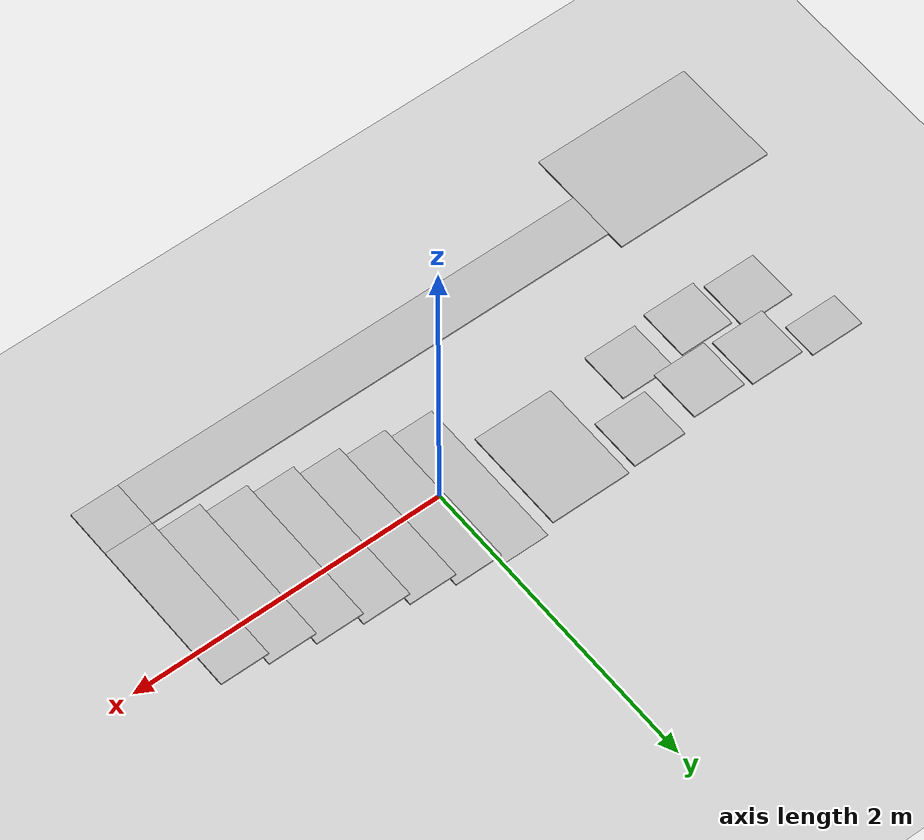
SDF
<?xml version="1.0" ?>
<sdf version="1.4">
  <world name="default">
    <physics type="ode">
      <gravity>0 0 -9.81</gravity>
      <ode>
        <solver>
          <type>quick</type>
          <iters>50</iters>
          <sor>1.4</sor>
        </solver>
        <constraints>
          <cfm>0.0</cfm>
          <erp>0.2</erp>
          <contact_max_correcting_vel>100.0</contact_max_correcting_vel>
          <contact_surface_layer>0.0</contact_surface_layer>
        </constraints>
      </ode>
      <real_time_update_rate>1000</real_time_update_rate>
      <max_step_size>0.001</max_step_size>
    </physics>

    <!-- A global light source -->
    <include>
      <uri>model://sun</uri>
    </include>

    <!-- A ground plane -->
    <include>
      <uri>model://ground_plane</uri>
    </include>

<model name="box_0">
<pose> -2.2800000000000002 0.415 0.045000000000000005 0 0 0</pose>
<static>true</static>
<link name="box_0_body">
  <inertial>
  <mass>1.0</mass>
  <inertia>
    <ixx>1.0</ixx>
    <ixy>0.0</ixy>
    <ixz>0.0</ixz>
    <iyy>1.0</iyy>
    <iyz>0.0</iyz>
    <izz>1.0</izz>
  </inertia>
</inertial>
<collision name="collision">
 <geometry>
    <box>
      <size>0.3400000000000003 0.23000000000000004 0.01</size>
    </box>
  </geometry>
</collision>
<visual name="visual">
  <geometry>
    <box>
      <size>0.3400000000000003 0.23000000000000004 0.01</size>
    </box>
  </geometry>
    </visual>
  </link>
</model>

<model name="box_1">
<pose> -2.08 0.015 0.095 0 0 0</pose>
<static>true</static>
<link name="box_1_body">
  <inertial>
  <mass>1.0</mass>
  <inertia>
    <ixx>1.0</ixx>
    <ixy>0.0</ixy>
    <ixz>0.0</ixz>
    <iyy>1.0</iyy>
    <iyz>0.0</iyz>
    <izz>1.0</izz>
  </inertia>
</inertial>
<collision name="collision">
 <geometry>
    <box>
      <size>0.3400000000000001 0.32999999999999996 0.01</size>
    </box>
  </geometry>
</collision>
<visual name="visual">
  <geometry>
    <box>
      <size>0.3400000000000001 0.32999999999999996 0.01</size>
    </box>
  </geometry>
    </visual>
  </link>
</model>

<model name="box_2">
<pose> -1.6600000000000001 0.015 0.195 0 0 0</pose>
<static>true</static>
<link name="box_2_body">
  <inertial>
  <mass>1.0</mass>
  <inertia>
    <ixx>1.0</ixx>
    <ixy>0.0</ixy>
    <ixz>0.0</ixz>
    <iyy>1.0</iyy>
    <iyz>0.0</iyz>
    <izz>1.0</izz>
  </inertia>
</inertial>
<collision name="collision">
 <geometry>
    <box>
      <size>0.3400000000000001 0.32999999999999996 0.01</size>
    </box>
  </geometry>
</collision>
<visual name="visual">
  <geometry>
    <box>
      <size>0.3400000000000001 0.32999999999999996 0.01</size>
    </box>
  </geometry>
    </visual>
  </link>
</model>

<model name="box_3">
<pose> -1.8599999999999999 0.36 0.145 0 0 0</pose>
<static>true</static>
<link name="box_3_body">
  <inertial>
  <mass>1.0</mass>
  <inertia>
    <ixx>1.0</ixx>
    <ixy>0.0</ixy>
    <ixz>0.0</ixz>
    <iyy>1.0</iyy>
    <iyz>0.0</iyz>
    <izz>1.0</izz>
  </inertia>
</inertial>
<collision name="collision">
 <geometry>
    <box>
      <size>0.33999999999999986 0.34 0.01</size>
    </box>
  </geometry>
</collision>
<visual name="visual">
  <geometry>
    <box>
      <size>0.33999999999999986 0.34 0.01</size>
    </box>
  </geometry>
    </visual>
  </link>
</model>

<model name="box_4">
<pose> -1.46 0.36 0.195 0 0 0</pose>
<static>true</static>
<link name="box_4_body">
  <inertial>
  <mass>1.0</mass>
  <inertia>
    <ixx>1.0</ixx>
    <ixy>0.0</ixy>
    <ixz>0.0</ixz>
    <iyy>1.0</iyy>
    <iyz>0.0</iyz>
    <izz>1.0</izz>
  </inertia>
</inertial>
<collision name="collision">
 <geometry>
    <box>
      <size>0.33999999999999986 0.34 0.01</size>
    </box>
  </geometry>
</collision>
<visual name="visual">
  <geometry>
    <box>
      <size>0.33999999999999986 0.34 0.01</size>
    </box>
  </geometry>
    </visual>
  </link>
</model>

<model name="box_5">
<pose> -1.26 0.015 0.145 0 0 0</pose>
<static>true</static>
<link name="box_5_body">
  <inertial>
  <mass>1.0</mass>
  <inertia>
    <ixx>1.0</ixx>
    <ixy>0.0</ixy>
    <ixz>0.0</ixz>
    <iyy>1.0</iyy>
    <iyz>0.0</iyz>
    <izz>1.0</izz>
  </inertia>
</inertial>
<collision name="collision">
 <geometry>
    <box>
      <size>0.33999999999999986 0.32999999999999996 0.01</size>
    </box>
  </geometry>
</collision>
<visual name="visual">
  <geometry>
    <box>
      <size>0.33999999999999986 0.32999999999999996 0.01</size>
    </box>
  </geometry>
    </visual>
  </link>
</model>

<model name="box_6">
<pose> -1.06 0.36 0.095 0 0 0</pose>
<static>true</static>
<link name="box_6_body">
  <inertial>
  <mass>1.0</mass>
  <inertia>
    <ixx>1.0</ixx>
    <ixy>0.0</ixy>
    <ixz>0.0</ixz>
    <iyy>1.0</iyy>
    <iyz>0.0</iyz>
    <izz>1.0</izz>
  </inertia>
</inertial>
<collision name="collision">
 <geometry>
    <box>
      <size>0.33999999999999997 0.34 0.01</size>
    </box>
  </geometry>
</collision>
<visual name="visual">
  <geometry>
    <box>
      <size>0.33999999999999997 0.34 0.01</size>
    </box>
  </geometry>
    </visual>
  </link>
</model>

<model name="box_7">
<pose> -0.605 0.185 0.045000000000000005 0 0 0</pose>
<static>true</static>
<link name="box_7_body">
  <inertial>
  <mass>1.0</mass>
  <inertia>
    <ixx>1.0</ixx>
    <ixy>0.0</ixy>
    <ixz>0.0</ixz>
    <iyy>1.0</iyy>
    <iyz>0.0</iyz>
    <izz>1.0</izz>
  </inertia>
</inertial>
<collision name="collision">
 <geometry>
    <box>
      <size>0.51 0.67 0.01</size>
    </box>
  </geometry>
</collision>
<visual name="visual">
  <geometry>
    <box>
      <size>0.51 0.67 0.01</size>
    </box>
  </geometry>
    </visual>
  </link>
</model>

<model name="box_8">
<pose> 0.45999999999999996 0.04000000000000002 0.195 0 0 0</pose>
<static>true</static>
<link name="box_8_body">
  <inertial>
  <mass>1.0</mass>
  <inertia>
    <ixx>1.0</ixx>
    <ixy>0.0</ixy>
    <ixz>0.0</ixz>
    <iyy>1.0</iyy>
    <iyz>0.0</iyz>
    <izz>1.0</izz>
  </inertia>
</inertial>
<collision name="collision">
 <geometry>
    <box>
      <size>0.3 1.0 0.01</size>
    </box>
  </geometry>
</collision>
<visual name="visual">
  <geometry>
    <box>
      <size>0.3 1.0 0.01</size>
    </box>
  </geometry>
    </visual>
  </link>
</model>

<model name="box_9">
<pose> 0.16 0.04000000000000002 0.095 0 0 0</pose>
<static>true</static>
<link name="box_9_body">
  <inertial>
  <mass>1.0</mass>
  <inertia>
    <ixx>1.0</ixx>
    <ixy>0.0</ixy>
    <ixz>0.0</ixz>
    <iyy>1.0</iyy>
    <iyz>0.0</iyz>
    <izz>1.0</izz>
  </inertia>
</inertial>
<collision name="collision">
 <geometry>
    <box>
      <size>0.3 1.0 0.01</size>
    </box>
  </geometry>
</collision>
<visual name="visual">
  <geometry>
    <box>
      <size>0.3 1.0 0.01</size>
    </box>
  </geometry>
    </visual>
  </link>
</model>

<model name="box_10">
<pose> 0.76 0.04000000000000002 0.295 0 0 0</pose>
<static>true</static>
<link name="box_10_body">
  <inertial>
  <mass>1.0</mass>
  <inertia>
    <ixx>1.0</ixx>
    <ixy>0.0</ixy>
    <ixz>0.0</ixz>
    <iyy>1.0</iyy>
    <iyz>0.0</iyz>
    <izz>1.0</izz>
  </inertia>
</inertial>
<collision name="collision">
 <geometry>
    <box>
      <size>0.30000000000000004 1.0 0.01</size>
    </box>
  </geometry>
</collision>
<visual name="visual">
  <geometry>
    <box>
      <size>0.30000000000000004 1.0 0.01</size>
    </box>
  </geometry>
    </visual>
  </link>
</model>

<model name="box_11">
<pose> 1.06 0.04000000000000002 0.395 0 0 0</pose>
<static>true</static>
<link name="box_11_body">
  <inertial>
  <mass>1.0</mass>
  <inertia>
    <ixx>1.0</ixx>
    <ixy>0.0</ixy>
    <ixz>0.0</ixz>
    <iyy>1.0</iyy>
    <iyz>0.0</iyz>
    <izz>1.0</izz>
  </inertia>
</inertial>
<collision name="collision">
 <geometry>
    <box>
      <size>0.29999999999999993 1.0 0.01</size>
    </box>
  </geometry>
</collision>
<visual name="visual">
  <geometry>
    <box>
      <size>0.29999999999999993 1.0 0.01</size>
    </box>
  </geometry>
    </visual>
  </link>
</model>

<model name="box_12">
<pose> 1.3599999999999999 0.04000000000000002 0.495 0 0 0</pose>
<static>true</static>
<link name="box_12_body">
  <inertial>
  <mass>1.0</mass>
  <inertia>
    <ixx>1.0</ixx>
    <ixy>0.0</ixy>
    <ixz>0.0</ixz>
    <iyy>1.0</iyy>
    <iyz>0.0</iyz>
    <izz>1.0</izz>
  </inertia>
</inertial>
<collision name="collision">
 <geometry>
    <box>
      <size>0.30000000000000004 1.0 0.01</size>
    </box>
  </geometry>
</collision>
<visual name="visual">
  <geometry>
    <box>
      <size>0.30000000000000004 1.0 0.01</size>
    </box>
  </geometry>
    </visual>
  </link>
</model>

<model name="box_13">
<pose> 1.6600000000000001 0.04000000000000002 0.595 0 0 0</pose>
<static>true</static>
<link name="box_13_body">
  <inertial>
  <mass>1.0</mass>
  <inertia>
    <ixx>1.0</ixx>
    <ixy>0.0</ixy>
    <ixz>0.0</ixz>
    <iyy>1.0</iyy>
    <iyz>0.0</iyz>
    <izz>1.0</izz>
  </inertia>
</inertial>
<collision name="collision">
 <geometry>
    <box>
      <size>0.30000000000000004 1.0 0.01</size>
    </box>
  </geometry>
</collision>
<visual name="visual">
  <geometry>
    <box>
      <size>0.30000000000000004 1.0 0.01</size>
    </box>
  </geometry>
    </visual>
  </link>
</model>

<model name="box_14">
<pose> 1.6600000000000001 -0.6100000000000001 0.595 0 0 0</pose>
<static>true</static>
<link name="box_14_body">
  <inertial>
  <mass>1.0</mass>
  <inertia>
    <ixx>1.0</ixx>
    <ixy>0.0</ixy>
    <ixz>0.0</ixz>
    <iyy>1.0</iyy>
    <iyz>0.0</iyz>
    <izz>1.0</izz>
  </inertia>
</inertial>
<collision name="collision">
 <geometry>
    <box>
      <size>0.30000000000000004 0.3 0.01</size>
    </box>
  </geometry>
</collision>
<visual name="visual">
  <geometry>
    <box>
      <size>0.30000000000000004 0.3 0.01</size>
    </box>
  </geometry>
    </visual>
  </link>
</model>

<model name="box_15">
<pose> -0.145 0.04000000000000002 -0.005 0 0 0</pose>
<static>true</static>
<link name="box_15_body">
  <inertial>
  <mass>1.0</mass>
  <inertia>
    <ixx>1.0</ixx>
    <ixy>0.0</ixy>
    <ixz>0.0</ixz>
    <iyy>1.0</iyy>
    <iyz>0.0</iyz>
    <izz>1.0</izz>
  </inertia>
</inertial>
<collision name="collision">
 <geometry>
    <box>
      <size>0.31 1.0 0.01</size>
    </box>
  </geometry>
</collision>
<visual name="visual">
  <geometry>
    <box>
      <size>0.31 1.0 0.01</size>
    </box>
  </geometry>
    </visual>
  </link>
</model>

<model name="box_16">
<pose> 1.3599999999999999 0.04000000000000002 0.495 0 0 0</pose>
<static>true</static>
<link name="box_16_body">
  <inertial>
  <mass>1.0</mass>
  <inertia>
    <ixx>1.0</ixx>
    <ixy>0.0</ixy>
    <ixz>0.0</ixz>
    <iyy>1.0</iyy>
    <iyz>0.0</iyz>
    <izz>1.0</izz>
  </inertia>
</inertial>
<collision name="collision">
 <geometry>
    <box>
      <size>0.30000000000000004 1.0 0.01</size>
    </box>
  </geometry>
</collision>
<visual name="visual">
  <geometry>
    <box>
      <size>0.30000000000000004 1.0 0.01</size>
    </box>
  </geometry>
    </visual>
  </link>
</model>

<model name="box_17">
<pose> 1.6600000000000001 0.04000000000000002 0.595 0 0 0</pose>
<static>true</static>
<link name="box_17_body">
  <inertial>
  <mass>1.0</mass>
  <inertia>
    <ixx>1.0</ixx>
    <ixy>0.0</ixy>
    <ixz>0.0</ixz>
    <iyy>1.0</iyy>
    <iyz>0.0</iyz>
    <izz>1.0</izz>
  </inertia>
</inertial>
<collision name="collision">
 <geometry>
    <box>
      <size>0.30000000000000004 1.0 0.01</size>
    </box>
  </geometry>
</collision>
<visual name="visual">
  <geometry>
    <box>
      <size>0.30000000000000004 1.0 0.01</size>
    </box>
  </geometry>
    </visual>
  </link>
</model>

<model name="box_18">
<pose> 1.6600000000000001 -0.6100000000000001 0.595 0 0 0</pose>
<static>true</static>
<link name="box_18_body">
  <inertial>
  <mass>1.0</mass>
  <inertia>
    <ixx>1.0</ixx>
    <ixy>0.0</ixy>
    <ixz>0.0</ixz>
    <iyy>1.0</iyy>
    <iyz>0.0</iyz>
    <izz>1.0</izz>
  </inertia>
</inertial>
<collision name="collision">
 <geometry>
    <box>
      <size>0.30000000000000004 0.3 0.01</size>
    </box>
  </geometry>
</collision>
<visual name="visual">
  <geometry>
    <box>
      <size>0.30000000000000004 0.3 0.01</size>
    </box>
  </geometry>
    </visual>
  </link>
</model>

<model name="box_19">
<pose> 0.010000000000000009 -0.61 0.595 0 0 0</pose>
<static>true</static>
<link name="box_19_body">
  <inertial>
  <mass>1.0</mass>
  <inertia>
    <ixx>1.0</ixx>
    <ixy>0.0</ixy>
    <ixz>0.0</ixz>
    <iyy>1.0</iyy>
    <iyz>0.0</iyz>
    <izz>1.0</izz>
  </inertia>
</inertial>
<collision name="collision">
 <geometry>
    <box>
      <size>3.0 0.3 0.01</size>
    </box>
  </geometry>
</collision>
<visual name="visual">
  <geometry>
    <box>
      <size>3.0 0.3 0.01</size>
    </box>
  </geometry>
    </visual>
  </link>
</model>

<model name="box_20">
<pose> -1.9900000000000002 -0.7050000000000001 0.595 0 0 0</pose>
<static>true</static>
<link name="box_20_body">
  <inertial>
  <mass>1.0</mass>
  <inertia>
    <ixx>1.0</ixx>
    <ixy>0.0</ixy>
    <ixz>0.0</ixz>
    <iyy>1.0</iyy>
    <iyz>0.0</iyz>
    <izz>1.0</izz>
  </inertia>
</inertial>
<collision name="collision">
 <geometry>
    <box>
      <size>1.0000000000000002 0.7100000000000001 0.01</size>
    </box>
  </geometry>
</collision>
<visual name="visual">
  <geometry>
    <box>
      <size>1.0000000000000002 0.7100000000000001 0.01</size>
    </box>
  </geometry>
    </visual>
  </link>
</model>

  </world>
</sdf>
